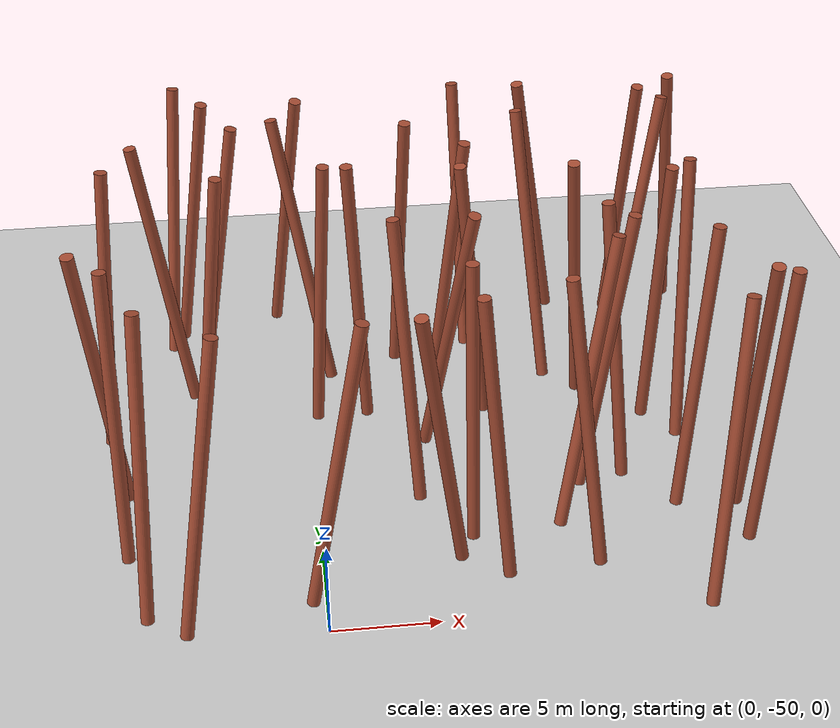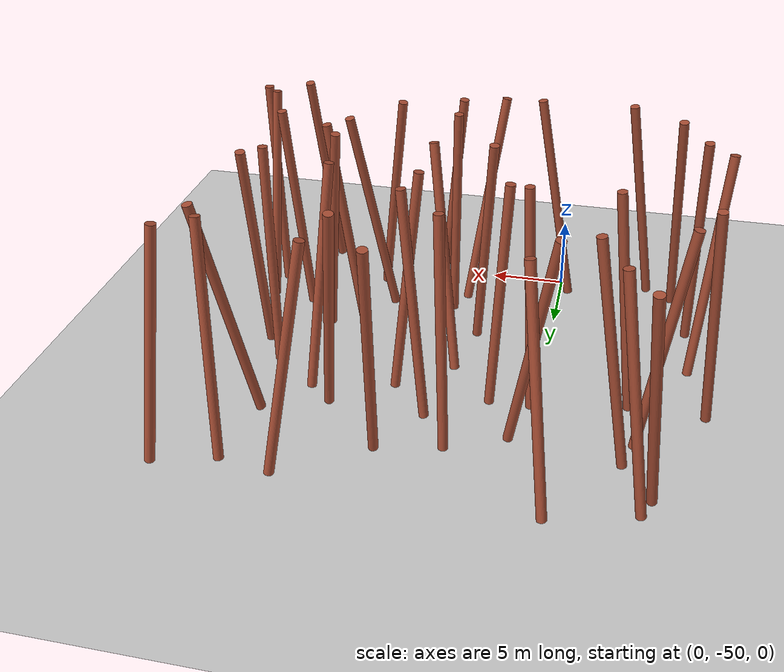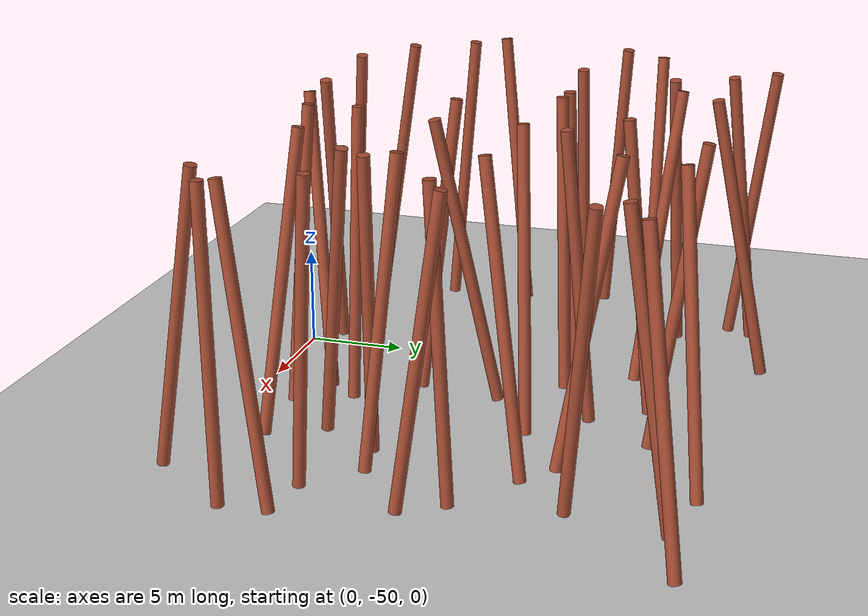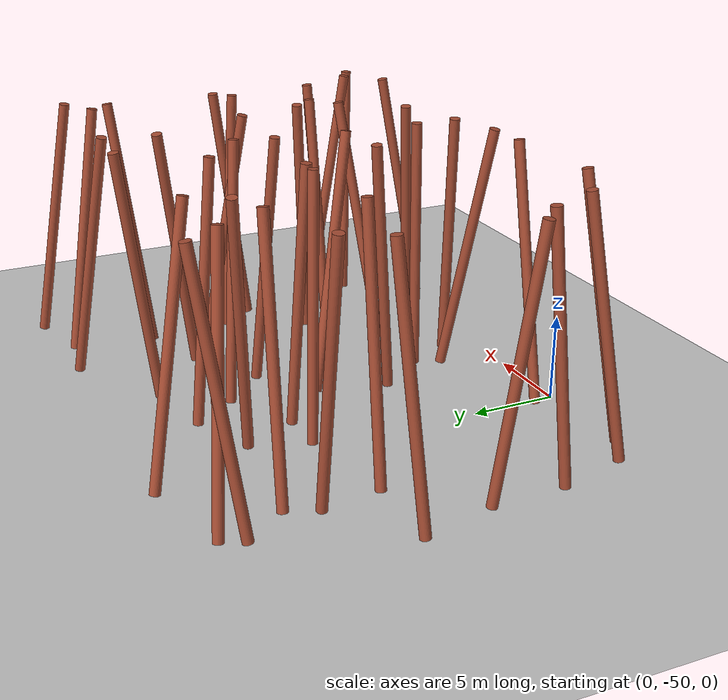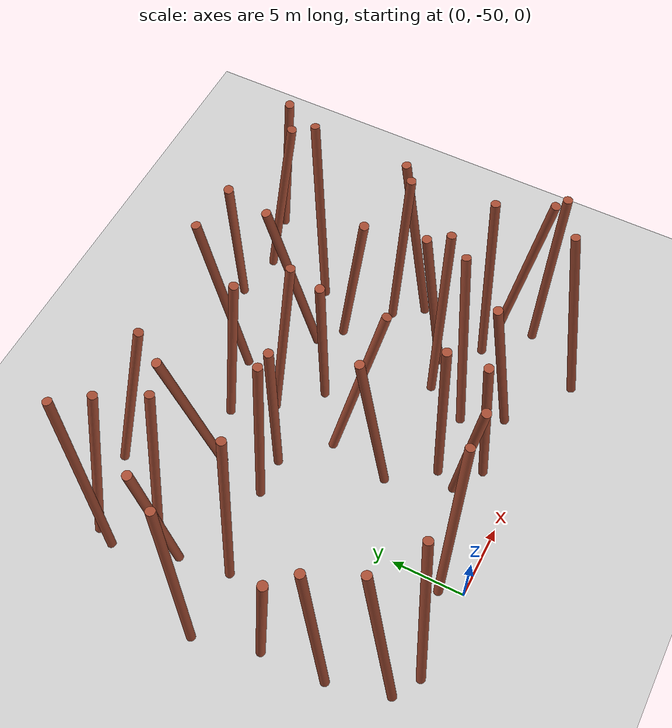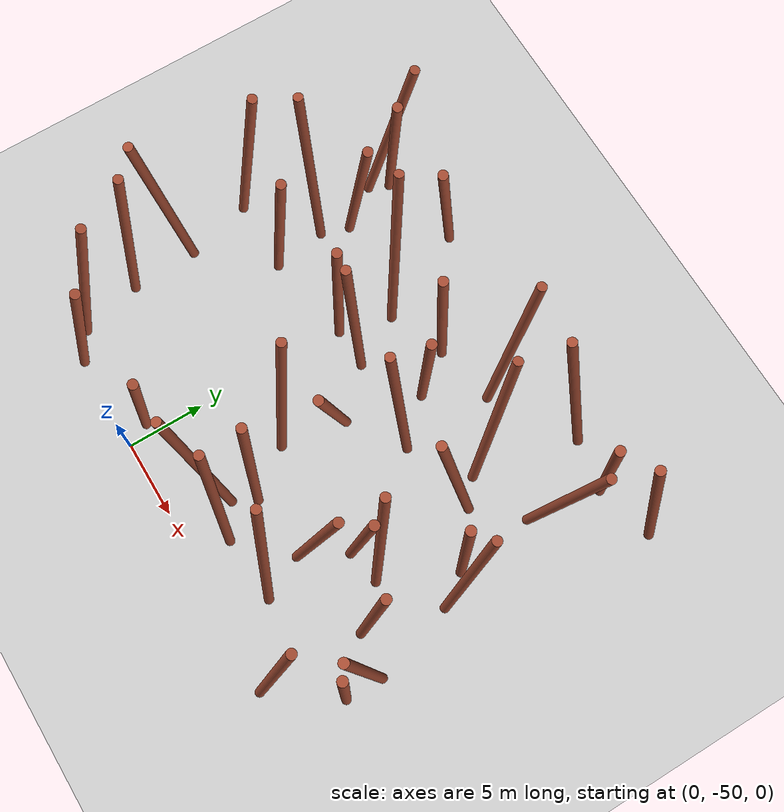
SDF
<sdf version="1.5">
 <world name="default">
  <include><uri>model://sun</uri></include>
  <include><uri>model://ground_plane</uri></include>
  <include><uri>model://asphalt_plane</uri><pose>0 0 -0.000001 0 0 0</pose></include>
  <model name="unit_cylinder_0">
   <pose>-7.53433 -47.54416 7.70000 -0.16482 0.05793 0.00000</pose>
   <gravity>0 0 0</gravity>
   <link name="link">
    <inertial>
     <mass>100</mass>
     <inertia><ixx>20</ixx><ixy>0</ixy><ixz>0</ixz><iyy>20</iyy><iyz>0</iyz><izz>20</izz></inertia>
    </inertial>
    <collision name="collision">
     <geometry><cylinder><radius>0.300</radius><length>15.000</length></cylinder></geometry>
    </collision>
    <visual name="visual">
     <geometry><cylinder><radius>0.300</radius><length>15.000</length></cylinder></geometry>
     <material>
      <script><name>Gazebo/Bricks</name><uri>file://media/materials/scripts/gazebo.material</uri></script>
     </material>
    </visual>
    <kinematic>1</kinematic>
   </link>
   <static>0</static>
   <plugin name="dynamic_obstacle_motion_0" filename="libobstaclePathPlugin.so">
    <motion_type>proximity_linear</motion_type>
    <direction>0.377619958 -0.925960673 0.000000000</direction>
    <velocity>1.842558451</velocity>
    <activation_distance>20.000000000</activation_distance>
    <activation_model>iris</activation_model>
    <orientation>false</orientation>
    <marker_enabled>true</marker_enabled>
    <marker_id>0</marker_id>
    <marker_radius>0.300000000</marker_radius>
    <marker_height>15.000000000</marker_height>
    <marker_rate>20.0</marker_rate>
    <marker_topic>/uav_simulator/dynamic_obstacles</marker_topic>
    <marker_frame>map</marker_frame>
   </plugin>
  </model>
  <model name="unit_cylinder_1">
   <pose>-8.78273 -44.01166 7.70000 -0.09766 0.02668 0.00000</pose>
   <gravity>0 0 0</gravity>
   <link name="link">
    <inertial>
     <mass>100</mass>
     <inertia><ixx>20</ixx><ixy>0</ixy><ixz>0</ixz><iyy>20</iyy><iyz>0</iyz><izz>20</izz></inertia>
    </inertial>
    <collision name="collision">
     <geometry><cylinder><radius>0.300</radius><length>15.000</length></cylinder></geometry>
    </collision>
    <visual name="visual">
     <geometry><cylinder><radius>0.300</radius><length>15.000</length></cylinder></geometry>
     <material>
      <script><name>Gazebo/Bricks</name><uri>file://media/materials/scripts/gazebo.material</uri></script>
     </material>
    </visual>
   </link>
   <static>1</static>
  </model>
  <model name="unit_cylinder_2">
   <pose>-9.56069 -41.14395 7.70000 0.10310 -0.05871 0.00000</pose>
   <gravity>0 0 0</gravity>
   <link name="link">
    <inertial>
     <mass>100</mass>
     <inertia><ixx>20</ixx><ixy>0</ixy><ixz>0</ixz><iyy>20</iyy><iyz>0</iyz><izz>20</izz></inertia>
    </inertial>
    <collision name="collision">
     <geometry><cylinder><radius>0.300</radius><length>15.000</length></cylinder></geometry>
    </collision>
    <visual name="visual">
     <geometry><cylinder><radius>0.300</radius><length>15.000</length></cylinder></geometry>
     <material>
      <script><name>Gazebo/Bricks</name><uri>file://media/materials/scripts/gazebo.material</uri></script>
     </material>
    </visual>
   </link>
   <static>1</static>
  </model>
  <model name="unit_cylinder_3">
   <pose>-9.64381 -35.40931 7.70000 -0.08878 0.07868 0.00000</pose>
   <gravity>0 0 0</gravity>
   <link name="link">
    <inertial>
     <mass>100</mass>
     <inertia><ixx>20</ixx><ixy>0</ixy><ixz>0</ixz><iyy>20</iyy><iyz>0</iyz><izz>20</izz></inertia>
    </inertial>
    <collision name="collision">
     <geometry><cylinder><radius>0.300</radius><length>15.000</length></cylinder></geometry>
    </collision>
    <visual name="visual">
     <geometry><cylinder><radius>0.300</radius><length>15.000</length></cylinder></geometry>
     <material>
      <script><name>Gazebo/Bricks</name><uri>file://media/materials/scripts/gazebo.material</uri></script>
     </material>
    </visual>
    <kinematic>1</kinematic>
   </link>
   <static>0</static>
   <plugin name="dynamic_obstacle_motion_3" filename="libobstaclePathPlugin.so">
    <motion_type>proximity_linear</motion_type>
    <direction>-0.023510522 -0.999723589 0.000000000</direction>
    <velocity>0.789084002</velocity>
    <activation_distance>20.000000000</activation_distance>
    <activation_model>iris</activation_model>
    <orientation>false</orientation>
    <marker_enabled>true</marker_enabled>
    <marker_id>3</marker_id>
    <marker_radius>0.300000000</marker_radius>
    <marker_height>15.000000000</marker_height>
    <marker_rate>20.0</marker_rate>
    <marker_topic>/uav_simulator/dynamic_obstacles</marker_topic>
    <marker_frame>map</marker_frame>
   </plugin>
  </model>
  <model name="unit_cylinder_4">
   <pose>-6.93488 -32.61874 7.70000 -0.00841 -0.12245 0.00000</pose>
   <gravity>0 0 0</gravity>
   <link name="link">
    <inertial>
     <mass>100</mass>
     <inertia><ixx>20</ixx><ixy>0</ixy><ixz>0</ixz><iyy>20</iyy><iyz>0</iyz><izz>20</izz></inertia>
    </inertial>
    <collision name="collision">
     <geometry><cylinder><radius>0.300</radius><length>15.000</length></cylinder></geometry>
    </collision>
    <visual name="visual">
     <geometry><cylinder><radius>0.300</radius><length>15.000</length></cylinder></geometry>
     <material>
      <script><name>Gazebo/Bricks</name><uri>file://media/materials/scripts/gazebo.material</uri></script>
     </material>
    </visual>
    <kinematic>1</kinematic>
   </link>
   <static>0</static>
   <plugin name="dynamic_obstacle_motion_4" filename="libobstaclePathPlugin.so">
    <motion_type>proximity_linear</motion_type>
    <direction>-0.650799631 0.759249524 0.000000000</direction>
    <velocity>0.699930068</velocity>
    <activation_distance>20.000000000</activation_distance>
    <activation_model>iris</activation_model>
    <orientation>false</orientation>
    <marker_enabled>true</marker_enabled>
    <marker_id>4</marker_id>
    <marker_radius>0.300000000</marker_radius>
    <marker_height>15.000000000</marker_height>
    <marker_rate>20.0</marker_rate>
    <marker_topic>/uav_simulator/dynamic_obstacles</marker_topic>
    <marker_frame>map</marker_frame>
   </plugin>
  </model>
  <model name="unit_cylinder_5">
   <pose>-6.59663 -27.28301 7.70000 -0.14401 0.08279 0.00000</pose>
   <gravity>0 0 0</gravity>
   <link name="link">
    <inertial>
     <mass>100</mass>
     <inertia><ixx>20</ixx><ixy>0</ixy><ixz>0</ixz><iyy>20</iyy><iyz>0</iyz><izz>20</izz></inertia>
    </inertial>
    <collision name="collision">
     <geometry><cylinder><radius>0.300</radius><length>15.000</length></cylinder></geometry>
    </collision>
    <visual name="visual">
     <geometry><cylinder><radius>0.300</radius><length>15.000</length></cylinder></geometry>
     <material>
      <script><name>Gazebo/Bricks</name><uri>file://media/materials/scripts/gazebo.material</uri></script>
     </material>
    </visual>
   </link>
   <static>1</static>
  </model>
  <model name="unit_cylinder_15">
   <pose>-5.10277 -49.07799 7.70000 -0.10513 0.14993 0.00000</pose>
   <gravity>0 0 0</gravity>
   <link name="link">
    <inertial>
     <mass>100</mass>
     <inertia><ixx>20</ixx><ixy>0</ixy><ixz>0</ixz><iyy>20</iyy><iyz>0</iyz><izz>20</izz></inertia>
    </inertial>
    <collision name="collision">
     <geometry><cylinder><radius>0.300</radius><length>15.000</length></cylinder></geometry>
    </collision>
    <visual name="visual">
     <geometry><cylinder><radius>0.300</radius><length>15.000</length></cylinder></geometry>
     <material>
      <script><name>Gazebo/Bricks</name><uri>file://media/materials/scripts/gazebo.material</uri></script>
     </material>
    </visual>
    <kinematic>1</kinematic>
   </link>
   <static>0</static>
   <plugin name="dynamic_obstacle_motion_15" filename="libobstaclePathPlugin.so">
    <motion_type>proximity_linear</motion_type>
    <direction>-0.502778501 0.864415282 0.000000000</direction>
    <velocity>1.408256255</velocity>
    <activation_distance>20.000000000</activation_distance>
    <activation_model>iris</activation_model>
    <orientation>false</orientation>
    <marker_enabled>true</marker_enabled>
    <marker_id>15</marker_id>
    <marker_radius>0.300000000</marker_radius>
    <marker_height>15.000000000</marker_height>
    <marker_rate>20.0</marker_rate>
    <marker_topic>/uav_simulator/dynamic_obstacles</marker_topic>
    <marker_frame>map</marker_frame>
   </plugin>
  </model>
  <model name="unit_cylinder_16">
   <pose>-4.68098 -36.06371 7.70000 -0.01164 0.11515 0.00000</pose>
   <gravity>0 0 0</gravity>
   <link name="link">
    <inertial>
     <mass>100</mass>
     <inertia><ixx>20</ixx><ixy>0</ixy><ixz>0</ixz><iyy>20</iyy><iyz>0</iyz><izz>20</izz></inertia>
    </inertial>
    <collision name="collision">
     <geometry><cylinder><radius>0.300</radius><length>15.000</length></cylinder></geometry>
    </collision>
    <visual name="visual">
     <geometry><cylinder><radius>0.300</radius><length>15.000</length></cylinder></geometry>
     <material>
      <script><name>Gazebo/Bricks</name><uri>file://media/materials/scripts/gazebo.material</uri></script>
     </material>
    </visual>
    <kinematic>1</kinematic>
   </link>
   <static>0</static>
   <plugin name="dynamic_obstacle_motion_16" filename="libobstaclePathPlugin.so">
    <motion_type>proximity_linear</motion_type>
    <direction>-0.969477639 0.245179747 -0.000000000</direction>
    <velocity>0.384918326</velocity>
    <activation_distance>20.000000000</activation_distance>
    <activation_model>iris</activation_model>
    <orientation>false</orientation>
    <marker_enabled>true</marker_enabled>
    <marker_id>16</marker_id>
    <marker_radius>0.300000000</marker_radius>
    <marker_height>15.000000000</marker_height>
    <marker_rate>20.0</marker_rate>
    <marker_topic>/uav_simulator/dynamic_obstacles</marker_topic>
    <marker_frame>map</marker_frame>
   </plugin>
  </model>
  <model name="unit_cylinder_17">
   <pose>-4.26286 -30.93398 7.70000 0.00834 0.15929 0.00000</pose>
   <gravity>0 0 0</gravity>
   <link name="link">
    <inertial>
     <mass>100</mass>
     <inertia><ixx>20</ixx><ixy>0</ixy><ixz>0</ixz><iyy>20</iyy><iyz>0</iyz><izz>20</izz></inertia>
    </inertial>
    <collision name="collision">
     <geometry><cylinder><radius>0.300</radius><length>15.000</length></cylinder></geometry>
    </collision>
    <visual name="visual">
     <geometry><cylinder><radius>0.300</radius><length>15.000</length></cylinder></geometry>
     <material>
      <script><name>Gazebo/Bricks</name><uri>file://media/materials/scripts/gazebo.material</uri></script>
     </material>
    </visual>
   </link>
   <static>1</static>
  </model>
  <model name="unit_cylinder_18">
   <pose>-5.60371 -27.65031 7.70000 0.07561 0.14385 0.00000</pose>
   <gravity>0 0 0</gravity>
   <link name="link">
    <inertial>
     <mass>100</mass>
     <inertia><ixx>20</ixx><ixy>0</ixy><ixz>0</ixz><iyy>20</iyy><iyz>0</iyz><izz>20</izz></inertia>
    </inertial>
    <collision name="collision">
     <geometry><cylinder><radius>0.300</radius><length>15.000</length></cylinder></geometry>
    </collision>
    <visual name="visual">
     <geometry><cylinder><radius>0.300</radius><length>15.000</length></cylinder></geometry>
     <material>
      <script><name>Gazebo/Bricks</name><uri>file://media/materials/scripts/gazebo.material</uri></script>
     </material>
    </visual>
    <kinematic>1</kinematic>
   </link>
   <static>0</static>
   <plugin name="dynamic_obstacle_motion_18" filename="libobstaclePathPlugin.so">
    <motion_type>proximity_linear</motion_type>
    <direction>0.450522633 0.892765007 0.000000000</direction>
    <velocity>0.734853509</velocity>
    <activation_distance>20.000000000</activation_distance>
    <activation_model>iris</activation_model>
    <orientation>false</orientation>
    <marker_enabled>true</marker_enabled>
    <marker_id>18</marker_id>
    <marker_radius>0.300000000</marker_radius>
    <marker_height>15.000000000</marker_height>
    <marker_rate>20.0</marker_rate>
    <marker_topic>/uav_simulator/dynamic_obstacles</marker_topic>
    <marker_frame>map</marker_frame>
   </plugin>
  </model>
  <model name="unit_cylinder_27">
   <pose>0.64072 -48.26306 7.70000 -0.02805 0.17023 0.00000</pose>
   <gravity>0 0 0</gravity>
   <link name="link">
    <inertial>
     <mass>100</mass>
     <inertia><ixx>20</ixx><ixy>0</ixy><ixz>0</ixz><iyy>20</iyy><iyz>0</iyz><izz>20</izz></inertia>
    </inertial>
    <collision name="collision">
     <geometry><cylinder><radius>0.300</radius><length>15.000</length></cylinder></geometry>
    </collision>
    <visual name="visual">
     <geometry><cylinder><radius>0.300</radius><length>15.000</length></cylinder></geometry>
     <material>
      <script><name>Gazebo/Bricks</name><uri>file://media/materials/scripts/gazebo.material</uri></script>
     </material>
    </visual>
   </link>
   <static>1</static>
  </model>
  <model name="unit_cylinder_28">
   <pose>0.75306 -35.29138 7.70000 0.02295 0.05097 0.00000</pose>
   <gravity>0 0 0</gravity>
   <link name="link">
    <inertial>
     <mass>100</mass>
     <inertia><ixx>20</ixx><ixy>0</ixy><ixz>0</ixz><iyy>20</iyy><iyz>0</iyz><izz>20</izz></inertia>
    </inertial>
    <collision name="collision">
     <geometry><cylinder><radius>0.300</radius><length>15.000</length></cylinder></geometry>
    </collision>
    <visual name="visual">
     <geometry><cylinder><radius>0.300</radius><length>15.000</length></cylinder></geometry>
     <material>
      <script><name>Gazebo/Bricks</name><uri>file://media/materials/scripts/gazebo.material</uri></script>
     </material>
    </visual>
    <kinematic>1</kinematic>
   </link>
   <static>0</static>
   <plugin name="dynamic_obstacle_motion_28" filename="libobstaclePathPlugin.so">
    <motion_type>proximity_linear</motion_type>
    <direction>0.999169012 0.040758858 0.000000000</direction>
    <velocity>0.725158731</velocity>
    <activation_distance>20.000000000</activation_distance>
    <activation_model>iris</activation_model>
    <orientation>false</orientation>
    <marker_enabled>true</marker_enabled>
    <marker_id>28</marker_id>
    <marker_radius>0.300000000</marker_radius>
    <marker_height>15.000000000</marker_height>
    <marker_rate>20.0</marker_rate>
    <marker_topic>/uav_simulator/dynamic_obstacles</marker_topic>
    <marker_frame>map</marker_frame>
   </plugin>
  </model>
  <model name="unit_cylinder_29">
   <pose>0.08620 -31.01687 7.70000 -0.10483 -0.16252 0.00000</pose>
   <gravity>0 0 0</gravity>
   <link name="link">
    <inertial>
     <mass>100</mass>
     <inertia><ixx>20</ixx><ixy>0</ixy><ixz>0</ixz><iyy>20</iyy><iyz>0</iyz><izz>20</izz></inertia>
    </inertial>
    <collision name="collision">
     <geometry><cylinder><radius>0.300</radius><length>15.000</length></cylinder></geometry>
    </collision>
    <visual name="visual">
     <geometry><cylinder><radius>0.300</radius><length>15.000</length></cylinder></geometry>
     <material>
      <script><name>Gazebo/Bricks</name><uri>file://media/materials/scripts/gazebo.material</uri></script>
     </material>
    </visual>
   </link>
   <static>1</static>
  </model>
  <model name="unit_cylinder_30">
   <pose>-0.64518 -26.98273 7.70000 0.17001 0.11079 0.00000</pose>
   <gravity>0 0 0</gravity>
   <link name="link">
    <inertial>
     <mass>100</mass>
     <inertia><ixx>20</ixx><ixy>0</ixy><ixz>0</ixz><iyy>20</iyy><iyz>0</iyz><izz>20</izz></inertia>
    </inertial>
    <collision name="collision">
     <geometry><cylinder><radius>0.300</radius><length>15.000</length></cylinder></geometry>
    </collision>
    <visual name="visual">
     <geometry><cylinder><radius>0.300</radius><length>15.000</length></cylinder></geometry>
     <material>
      <script><name>Gazebo/Bricks</name><uri>file://media/materials/scripts/gazebo.material</uri></script>
     </material>
    </visual>
   </link>
   <static>1</static>
  </model>
  <model name="unit_cylinder_37">
   <pose>5.32693 -47.16911 7.70000 0.10975 -0.14322 0.00000</pose>
   <gravity>0 0 0</gravity>
   <link name="link">
    <inertial>
     <mass>100</mass>
     <inertia><ixx>20</ixx><ixy>0</ixy><ixz>0</ixz><iyy>20</iyy><iyz>0</iyz><izz>20</izz></inertia>
    </inertial>
    <collision name="collision">
     <geometry><cylinder><radius>0.300</radius><length>15.000</length></cylinder></geometry>
    </collision>
    <visual name="visual">
     <geometry><cylinder><radius>0.300</radius><length>15.000</length></cylinder></geometry>
     <material>
      <script><name>Gazebo/Bricks</name><uri>file://media/materials/scripts/gazebo.material</uri></script>
     </material>
    </visual>
    <kinematic>1</kinematic>
   </link>
   <static>0</static>
   <plugin name="dynamic_obstacle_motion_37" filename="libobstaclePathPlugin.so">
    <motion_type>proximity_linear</motion_type>
    <direction>0.865789516 0.500408347 0.000000000</direction>
    <velocity>0.292876167</velocity>
    <activation_distance>20.000000000</activation_distance>
    <activation_model>iris</activation_model>
    <orientation>false</orientation>
    <marker_enabled>true</marker_enabled>
    <marker_id>37</marker_id>
    <marker_radius>0.300000000</marker_radius>
    <marker_height>15.000000000</marker_height>
    <marker_rate>20.0</marker_rate>
    <marker_topic>/uav_simulator/dynamic_obstacles</marker_topic>
    <marker_frame>map</marker_frame>
   </plugin>
  </model>
  <model name="unit_cylinder_38">
   <pose>4.41884 -41.22763 7.70000 -0.10581 -0.07132 0.00000</pose>
   <gravity>0 0 0</gravity>
   <link name="link">
    <inertial>
     <mass>100</mass>
     <inertia><ixx>20</ixx><ixy>0</ixy><ixz>0</ixz><iyy>20</iyy><iyz>0</iyz><izz>20</izz></inertia>
    </inertial>
    <collision name="collision">
     <geometry><cylinder><radius>0.300</radius><length>15.000</length></cylinder></geometry>
    </collision>
    <visual name="visual">
     <geometry><cylinder><radius>0.300</radius><length>15.000</length></cylinder></geometry>
     <material>
      <script><name>Gazebo/Bricks</name><uri>file://media/materials/scripts/gazebo.material</uri></script>
     </material>
    </visual>
   </link>
   <static>1</static>
  </model>
  <model name="unit_cylinder_39">
   <pose>2.58565 -35.30713 7.70000 0.03335 -0.05035 0.00000</pose>
   <gravity>0 0 0</gravity>
   <link name="link">
    <inertial>
     <mass>100</mass>
     <inertia><ixx>20</ixx><ixy>0</ixy><ixz>0</ixz><iyy>20</iyy><iyz>0</iyz><izz>20</izz></inertia>
    </inertial>
    <collision name="collision">
     <geometry><cylinder><radius>0.300</radius><length>15.000</length></cylinder></geometry>
    </collision>
    <visual name="visual">
     <geometry><cylinder><radius>0.300</radius><length>15.000</length></cylinder></geometry>
     <material>
      <script><name>Gazebo/Bricks</name><uri>file://media/materials/scripts/gazebo.material</uri></script>
     </material>
    </visual>
    <kinematic>1</kinematic>
   </link>
   <static>0</static>
   <plugin name="dynamic_obstacle_motion_39" filename="libobstaclePathPlugin.so">
    <motion_type>proximity_linear</motion_type>
    <direction>-0.978907618 0.204303391 -0.000000000</direction>
    <velocity>1.104325235</velocity>
    <activation_distance>20.000000000</activation_distance>
    <activation_model>iris</activation_model>
    <orientation>false</orientation>
    <marker_enabled>true</marker_enabled>
    <marker_id>39</marker_id>
    <marker_radius>0.300000000</marker_radius>
    <marker_height>15.000000000</marker_height>
    <marker_rate>20.0</marker_rate>
    <marker_topic>/uav_simulator/dynamic_obstacles</marker_topic>
    <marker_frame>map</marker_frame>
   </plugin>
  </model>
  <model name="unit_cylinder_40">
   <pose>5.13099 -30.90825 7.70000 0.08246 0.03224 0.00000</pose>
   <gravity>0 0 0</gravity>
   <link name="link">
    <inertial>
     <mass>100</mass>
     <inertia><ixx>20</ixx><ixy>0</ixy><ixz>0</ixz><iyy>20</iyy><iyz>0</iyz><izz>20</izz></inertia>
    </inertial>
    <collision name="collision">
     <geometry><cylinder><radius>0.300</radius><length>15.000</length></cylinder></geometry>
    </collision>
    <visual name="visual">
     <geometry><cylinder><radius>0.300</radius><length>15.000</length></cylinder></geometry>
     <material>
      <script><name>Gazebo/Bricks</name><uri>file://media/materials/scripts/gazebo.material</uri></script>
     </material>
    </visual>
   </link>
   <static>1</static>
  </model>
  <model name="unit_cylinder_51">
   <pose>7.67548 -47.31467 7.70000 -0.04460 -0.10075 0.00000</pose>
   <gravity>0 0 0</gravity>
   <link name="link">
    <inertial>
     <mass>100</mass>
     <inertia><ixx>20</ixx><ixy>0</ixy><ixz>0</ixz><iyy>20</iyy><iyz>0</iyz><izz>20</izz></inertia>
    </inertial>
    <collision name="collision">
     <geometry><cylinder><radius>0.300</radius><length>15.000</length></cylinder></geometry>
    </collision>
    <visual name="visual">
     <geometry><cylinder><radius>0.300</radius><length>15.000</length></cylinder></geometry>
     <material>
      <script><name>Gazebo/Bricks</name><uri>file://media/materials/scripts/gazebo.material</uri></script>
     </material>
    </visual>
   </link>
   <static>1</static>
  </model>
  <model name="unit_cylinder_52">
   <pose>6.97494 -44.70066 7.70000 -0.03168 -0.02127 0.00000</pose>
   <gravity>0 0 0</gravity>
   <link name="link">
    <inertial>
     <mass>100</mass>
     <inertia><ixx>20</ixx><ixy>0</ixy><ixz>0</ixz><iyy>20</iyy><iyz>0</iyz><izz>20</izz></inertia>
    </inertial>
    <collision name="collision">
     <geometry><cylinder><radius>0.300</radius><length>15.000</length></cylinder></geometry>
    </collision>
    <visual name="visual">
     <geometry><cylinder><radius>0.300</radius><length>15.000</length></cylinder></geometry>
     <material>
      <script><name>Gazebo/Bricks</name><uri>file://media/materials/scripts/gazebo.material</uri></script>
     </material>
    </visual>
    <kinematic>1</kinematic>
   </link>
   <static>0</static>
   <plugin name="dynamic_obstacle_motion_52" filename="libobstaclePathPlugin.so">
    <motion_type>proximity_linear</motion_type>
    <direction>0.679539945 -0.733638510 0.000000000</direction>
    <velocity>0.797888884</velocity>
    <activation_distance>20.000000000</activation_distance>
    <activation_model>iris</activation_model>
    <orientation>false</orientation>
    <marker_enabled>true</marker_enabled>
    <marker_id>52</marker_id>
    <marker_radius>0.300000000</marker_radius>
    <marker_height>15.000000000</marker_height>
    <marker_rate>20.0</marker_rate>
    <marker_topic>/uav_simulator/dynamic_obstacles</marker_topic>
    <marker_frame>map</marker_frame>
   </plugin>
  </model>
  <model name="unit_cylinder_53">
   <pose>6.60856 -39.08998 7.70000 0.17289 0.12512 0.00000</pose>
   <gravity>0 0 0</gravity>
   <link name="link">
    <inertial>
     <mass>100</mass>
     <inertia><ixx>20</ixx><ixy>0</ixy><ixz>0</ixz><iyy>20</iyy><iyz>0</iyz><izz>20</izz></inertia>
    </inertial>
    <collision name="collision">
     <geometry><cylinder><radius>0.300</radius><length>15.000</length></cylinder></geometry>
    </collision>
    <visual name="visual">
     <geometry><cylinder><radius>0.300</radius><length>15.000</length></cylinder></geometry>
     <material>
      <script><name>Gazebo/Bricks</name><uri>file://media/materials/scripts/gazebo.material</uri></script>
     </material>
    </visual>
    <kinematic>1</kinematic>
   </link>
   <static>0</static>
   <plugin name="dynamic_obstacle_motion_53" filename="libobstaclePathPlugin.so">
    <motion_type>proximity_linear</motion_type>
    <direction>-0.265497048 -0.964111673 0.000000000</direction>
    <velocity>1.921942027</velocity>
    <activation_distance>20.000000000</activation_distance>
    <activation_model>iris</activation_model>
    <orientation>false</orientation>
    <marker_enabled>true</marker_enabled>
    <marker_id>53</marker_id>
    <marker_radius>0.300000000</marker_radius>
    <marker_height>15.000000000</marker_height>
    <marker_rate>20.0</marker_rate>
    <marker_topic>/uav_simulator/dynamic_obstacles</marker_topic>
    <marker_frame>map</marker_frame>
   </plugin>
  </model>
  <model name="unit_cylinder_54">
   <pose>8.27313 -35.75967 7.70000 0.04221 -0.10684 0.00000</pose>
   <gravity>0 0 0</gravity>
   <link name="link">
    <inertial>
     <mass>100</mass>
     <inertia><ixx>20</ixx><ixy>0</ixy><ixz>0</ixz><iyy>20</iyy><iyz>0</iyz><izz>20</izz></inertia>
    </inertial>
    <collision name="collision">
     <geometry><cylinder><radius>0.300</radius><length>15.000</length></cylinder></geometry>
    </collision>
    <visual name="visual">
     <geometry><cylinder><radius>0.300</radius><length>15.000</length></cylinder></geometry>
     <material>
      <script><name>Gazebo/Bricks</name><uri>file://media/materials/scripts/gazebo.material</uri></script>
     </material>
    </visual>
    <kinematic>1</kinematic>
   </link>
   <static>0</static>
   <plugin name="dynamic_obstacle_motion_54" filename="libobstaclePathPlugin.so">
    <motion_type>proximity_linear</motion_type>
    <direction>0.763895664 0.645339766 0.000000000</direction>
    <velocity>0.440898402</velocity>
    <activation_distance>20.000000000</activation_distance>
    <activation_model>iris</activation_model>
    <orientation>false</orientation>
    <marker_enabled>true</marker_enabled>
    <marker_id>54</marker_id>
    <marker_radius>0.300000000</marker_radius>
    <marker_height>15.000000000</marker_height>
    <marker_rate>20.0</marker_rate>
    <marker_topic>/uav_simulator/dynamic_obstacles</marker_topic>
    <marker_frame>map</marker_frame>
   </plugin>
  </model>
  <model name="unit_cylinder_55">
   <pose>7.31557 -33.38093 7.70000 0.06559 0.09041 0.00000</pose>
   <gravity>0 0 0</gravity>
   <link name="link">
    <inertial>
     <mass>100</mass>
     <inertia><ixx>20</ixx><ixy>0</ixy><ixz>0</ixz><iyy>20</iyy><iyz>0</iyz><izz>20</izz></inertia>
    </inertial>
    <collision name="collision">
     <geometry><cylinder><radius>0.300</radius><length>15.000</length></cylinder></geometry>
    </collision>
    <visual name="visual">
     <geometry><cylinder><radius>0.300</radius><length>15.000</length></cylinder></geometry>
     <material>
      <script><name>Gazebo/Bricks</name><uri>file://media/materials/scripts/gazebo.material</uri></script>
     </material>
    </visual>
   </link>
   <static>1</static>
  </model>
  <model name="unit_cylinder_56">
   <pose>8.58478 -28.36931 7.70000 -0.14822 -0.04207 0.00000</pose>
   <gravity>0 0 0</gravity>
   <link name="link">
    <inertial>
     <mass>100</mass>
     <inertia><ixx>20</ixx><ixy>0</ixy><ixz>0</ixz><iyy>20</iyy><iyz>0</iyz><izz>20</izz></inertia>
    </inertial>
    <collision name="collision">
     <geometry><cylinder><radius>0.300</radius><length>15.000</length></cylinder></geometry>
    </collision>
    <visual name="visual">
     <geometry><cylinder><radius>0.300</radius><length>15.000</length></cylinder></geometry>
     <material>
      <script><name>Gazebo/Bricks</name><uri>file://media/materials/scripts/gazebo.material</uri></script>
     </material>
    </visual>
    <kinematic>1</kinematic>
   </link>
   <static>0</static>
   <plugin name="dynamic_obstacle_motion_56" filename="libobstaclePathPlugin.so">
    <motion_type>proximity_linear</motion_type>
    <direction>0.075944518 0.997112045 0.000000000</direction>
    <velocity>0.482660247</velocity>
    <activation_distance>20.000000000</activation_distance>
    <activation_model>iris</activation_model>
    <orientation>false</orientation>
    <marker_enabled>true</marker_enabled>
    <marker_id>56</marker_id>
    <marker_radius>0.300000000</marker_radius>
    <marker_height>15.000000000</marker_height>
    <marker_rate>20.0</marker_rate>
    <marker_topic>/uav_simulator/dynamic_obstacles</marker_topic>
    <marker_frame>map</marker_frame>
   </plugin>
  </model>
  <model name="unit_cylinder_66">
   <pose>11.74578 -46.65088 7.70000 -0.10045 -0.12913 0.00000</pose>
   <gravity>0 0 0</gravity>
   <link name="link">
    <inertial>
     <mass>100</mass>
     <inertia><ixx>20</ixx><ixy>0</ixy><ixz>0</ixz><iyy>20</iyy><iyz>0</iyz><izz>20</izz></inertia>
    </inertial>
    <collision name="collision">
     <geometry><cylinder><radius>0.300</radius><length>15.000</length></cylinder></geometry>
    </collision>
    <visual name="visual">
     <geometry><cylinder><radius>0.300</radius><length>15.000</length></cylinder></geometry>
     <material>
      <script><name>Gazebo/Bricks</name><uri>file://media/materials/scripts/gazebo.material</uri></script>
     </material>
    </visual>
    <kinematic>1</kinematic>
   </link>
   <static>0</static>
   <plugin name="dynamic_obstacle_motion_66" filename="libobstaclePathPlugin.so">
    <motion_type>proximity_linear</motion_type>
    <direction>-0.596055631 -0.802943139 -0.000000000</direction>
    <velocity>1.676249852</velocity>
    <activation_distance>20.000000000</activation_distance>
    <activation_model>iris</activation_model>
    <orientation>false</orientation>
    <marker_enabled>true</marker_enabled>
    <marker_id>66</marker_id>
    <marker_radius>0.300000000</marker_radius>
    <marker_height>15.000000000</marker_height>
    <marker_rate>20.0</marker_rate>
    <marker_topic>/uav_simulator/dynamic_obstacles</marker_topic>
    <marker_frame>map</marker_frame>
   </plugin>
  </model>
  <model name="unit_cylinder_67">
   <pose>12.40873 -43.71671 7.70000 -0.13075 0.14279 0.00000</pose>
   <gravity>0 0 0</gravity>
   <link name="link">
    <inertial>
     <mass>100</mass>
     <inertia><ixx>20</ixx><ixy>0</ixy><ixz>0</ixz><iyy>20</iyy><iyz>0</iyz><izz>20</izz></inertia>
    </inertial>
    <collision name="collision">
     <geometry><cylinder><radius>0.300</radius><length>15.000</length></cylinder></geometry>
    </collision>
    <visual name="visual">
     <geometry><cylinder><radius>0.300</radius><length>15.000</length></cylinder></geometry>
     <material>
      <script><name>Gazebo/Bricks</name><uri>file://media/materials/scripts/gazebo.material</uri></script>
     </material>
    </visual>
   </link>
   <static>1</static>
  </model>
  <model name="unit_cylinder_68">
   <pose>13.68333 -41.56326 7.70000 -0.03372 0.11181 0.00000</pose>
   <gravity>0 0 0</gravity>
   <link name="link">
    <inertial>
     <mass>100</mass>
     <inertia><ixx>20</ixx><ixy>0</ixy><ixz>0</ixz><iyy>20</iyy><iyz>0</iyz><izz>20</izz></inertia>
    </inertial>
    <collision name="collision">
     <geometry><cylinder><radius>0.300</radius><length>15.000</length></cylinder></geometry>
    </collision>
    <visual name="visual">
     <geometry><cylinder><radius>0.300</radius><length>15.000</length></cylinder></geometry>
     <material>
      <script><name>Gazebo/Bricks</name><uri>file://media/materials/scripts/gazebo.material</uri></script>
     </material>
    </visual>
    <kinematic>1</kinematic>
   </link>
   <static>0</static>
   <plugin name="dynamic_obstacle_motion_68" filename="libobstaclePathPlugin.so">
    <motion_type>proximity_linear</motion_type>
    <direction>0.404970638 -0.914329690 0.000000000</direction>
    <velocity>1.100615678</velocity>
    <activation_distance>20.000000000</activation_distance>
    <activation_model>iris</activation_model>
    <orientation>false</orientation>
    <marker_enabled>true</marker_enabled>
    <marker_id>68</marker_id>
    <marker_radius>0.300000000</marker_radius>
    <marker_height>15.000000000</marker_height>
    <marker_rate>20.0</marker_rate>
    <marker_topic>/uav_simulator/dynamic_obstacles</marker_topic>
    <marker_frame>map</marker_frame>
   </plugin>
  </model>
  <model name="unit_cylinder_69">
   <pose>13.52641 -35.28094 7.70000 0.13801 -0.09553 0.00000</pose>
   <gravity>0 0 0</gravity>
   <link name="link">
    <inertial>
     <mass>100</mass>
     <inertia><ixx>20</ixx><ixy>0</ixy><ixz>0</ixz><iyy>20</iyy><iyz>0</iyz><izz>20</izz></inertia>
    </inertial>
    <collision name="collision">
     <geometry><cylinder><radius>0.300</radius><length>15.000</length></cylinder></geometry>
    </collision>
    <visual name="visual">
     <geometry><cylinder><radius>0.300</radius><length>15.000</length></cylinder></geometry>
     <material>
      <script><name>Gazebo/Bricks</name><uri>file://media/materials/scripts/gazebo.material</uri></script>
     </material>
    </visual>
   </link>
   <static>1</static>
  </model>
  <model name="unit_cylinder_70">
   <pose>11.86415 -31.76531 7.70000 -0.16316 -0.11158 0.00000</pose>
   <gravity>0 0 0</gravity>
   <link name="link">
    <inertial>
     <mass>100</mass>
     <inertia><ixx>20</ixx><ixy>0</ixy><ixz>0</ixz><iyy>20</iyy><iyz>0</iyz><izz>20</izz></inertia>
    </inertial>
    <collision name="collision">
     <geometry><cylinder><radius>0.300</radius><length>15.000</length></cylinder></geometry>
    </collision>
    <visual name="visual">
     <geometry><cylinder><radius>0.300</radius><length>15.000</length></cylinder></geometry>
     <material>
      <script><name>Gazebo/Bricks</name><uri>file://media/materials/scripts/gazebo.material</uri></script>
     </material>
    </visual>
    <kinematic>1</kinematic>
   </link>
   <static>0</static>
   <plugin name="dynamic_obstacle_motion_70" filename="libobstaclePathPlugin.so">
    <motion_type>proximity_linear</motion_type>
    <direction>-0.679470924 0.733702435 0.000000000</direction>
    <velocity>0.837635981</velocity>
    <activation_distance>20.000000000</activation_distance>
    <activation_model>iris</activation_model>
    <orientation>false</orientation>
    <marker_enabled>true</marker_enabled>
    <marker_id>70</marker_id>
    <marker_radius>0.300000000</marker_radius>
    <marker_height>15.000000000</marker_height>
    <marker_rate>20.0</marker_rate>
    <marker_topic>/uav_simulator/dynamic_obstacles</marker_topic>
    <marker_frame>map</marker_frame>
   </plugin>
  </model>
  <model name="unit_cylinder_71">
   <pose>12.87628 -26.89175 7.70000 0.09529 -0.16915 0.00000</pose>
   <gravity>0 0 0</gravity>
   <link name="link">
    <inertial>
     <mass>100</mass>
     <inertia><ixx>20</ixx><ixy>0</ixy><ixz>0</ixz><iyy>20</iyy><iyz>0</iyz><izz>20</izz></inertia>
    </inertial>
    <collision name="collision">
     <geometry><cylinder><radius>0.300</radius><length>15.000</length></cylinder></geometry>
    </collision>
    <visual name="visual">
     <geometry><cylinder><radius>0.300</radius><length>15.000</length></cylinder></geometry>
     <material>
      <script><name>Gazebo/Bricks</name><uri>file://media/materials/scripts/gazebo.material</uri></script>
     </material>
    </visual>
    <kinematic>1</kinematic>
   </link>
   <static>0</static>
   <plugin name="dynamic_obstacle_motion_71" filename="libobstaclePathPlugin.so">
    <motion_type>proximity_linear</motion_type>
    <direction>-0.055883220 0.998437312 0.000000000</direction>
    <velocity>1.792855078</velocity>
    <activation_distance>20.000000000</activation_distance>
    <activation_model>iris</activation_model>
    <orientation>false</orientation>
    <marker_enabled>true</marker_enabled>
    <marker_id>71</marker_id>
    <marker_radius>0.300000000</marker_radius>
    <marker_height>15.000000000</marker_height>
    <marker_rate>20.0</marker_rate>
    <marker_topic>/uav_simulator/dynamic_obstacles</marker_topic>
    <marker_frame>map</marker_frame>
   </plugin>
  </model>
  <model name="unit_cylinder_81">
   <pose>17.45324 -49.26698 7.70000 -0.17447 0.04612 0.00000</pose>
   <gravity>0 0 0</gravity>
   <link name="link">
    <inertial>
     <mass>100</mass>
     <inertia><ixx>20</ixx><ixy>0</ixy><ixz>0</ixz><iyy>20</iyy><iyz>0</iyz><izz>20</izz></inertia>
    </inertial>
    <collision name="collision">
     <geometry><cylinder><radius>0.300</radius><length>15.000</length></cylinder></geometry>
    </collision>
    <visual name="visual">
     <geometry><cylinder><radius>0.300</radius><length>15.000</length></cylinder></geometry>
     <material>
      <script><name>Gazebo/Bricks</name><uri>file://media/materials/scripts/gazebo.material</uri></script>
     </material>
    </visual>
    <kinematic>1</kinematic>
   </link>
   <static>0</static>
   <plugin name="dynamic_obstacle_motion_81" filename="libobstaclePathPlugin.so">
    <motion_type>proximity_linear</motion_type>
    <direction>-0.660258990 0.751037993 0.000000000</direction>
    <velocity>1.827882569</velocity>
    <activation_distance>20.000000000</activation_distance>
    <activation_model>iris</activation_model>
    <orientation>false</orientation>
    <marker_enabled>true</marker_enabled>
    <marker_id>81</marker_id>
    <marker_radius>0.300000000</marker_radius>
    <marker_height>15.000000000</marker_height>
    <marker_rate>20.0</marker_rate>
    <marker_topic>/uav_simulator/dynamic_obstacles</marker_topic>
    <marker_frame>map</marker_frame>
   </plugin>
  </model>
  <model name="unit_cylinder_82">
   <pose>17.59095 -43.23118 7.70000 -0.06946 0.04490 0.00000</pose>
   <gravity>0 0 0</gravity>
   <link name="link">
    <inertial>
     <mass>100</mass>
     <inertia><ixx>20</ixx><ixy>0</ixy><ixz>0</ixz><iyy>20</iyy><iyz>0</iyz><izz>20</izz></inertia>
    </inertial>
    <collision name="collision">
     <geometry><cylinder><radius>0.300</radius><length>15.000</length></cylinder></geometry>
    </collision>
    <visual name="visual">
     <geometry><cylinder><radius>0.300</radius><length>15.000</length></cylinder></geometry>
     <material>
      <script><name>Gazebo/Bricks</name><uri>file://media/materials/scripts/gazebo.material</uri></script>
     </material>
    </visual>
    <kinematic>1</kinematic>
   </link>
   <static>0</static>
   <plugin name="dynamic_obstacle_motion_82" filename="libobstaclePathPlugin.so">
    <motion_type>proximity_linear</motion_type>
    <direction>-0.904112465 -0.427294572 0.000000000</direction>
    <velocity>1.240265033</velocity>
    <activation_distance>20.000000000</activation_distance>
    <activation_model>iris</activation_model>
    <orientation>false</orientation>
    <marker_enabled>true</marker_enabled>
    <marker_id>82</marker_id>
    <marker_radius>0.300000000</marker_radius>
    <marker_height>15.000000000</marker_height>
    <marker_rate>20.0</marker_rate>
    <marker_topic>/uav_simulator/dynamic_obstacles</marker_topic>
    <marker_frame>map</marker_frame>
   </plugin>
  </model>
  <model name="unit_cylinder_83">
   <pose>14.35000 -40.74772 7.70000 -0.08679 -0.10131 0.00000</pose>
   <gravity>0 0 0</gravity>
   <link name="link">
    <inertial>
     <mass>100</mass>
     <inertia><ixx>20</ixx><ixy>0</ixy><ixz>0</ixz><iyy>20</iyy><iyz>0</iyz><izz>20</izz></inertia>
    </inertial>
    <collision name="collision">
     <geometry><cylinder><radius>0.300</radius><length>15.000</length></cylinder></geometry>
    </collision>
    <visual name="visual">
     <geometry><cylinder><radius>0.300</radius><length>15.000</length></cylinder></geometry>
     <material>
      <script><name>Gazebo/Bricks</name><uri>file://media/materials/scripts/gazebo.material</uri></script>
     </material>
    </visual>
    <kinematic>1</kinematic>
   </link>
   <static>0</static>
   <plugin name="dynamic_obstacle_motion_83" filename="libobstaclePathPlugin.so">
    <motion_type>proximity_linear</motion_type>
    <direction>-0.929689645 -0.368343813 0.000000000</direction>
    <velocity>0.565204004</velocity>
    <activation_distance>20.000000000</activation_distance>
    <activation_model>iris</activation_model>
    <orientation>false</orientation>
    <marker_enabled>true</marker_enabled>
    <marker_id>83</marker_id>
    <marker_radius>0.300000000</marker_radius>
    <marker_height>15.000000000</marker_height>
    <marker_rate>20.0</marker_rate>
    <marker_topic>/uav_simulator/dynamic_obstacles</marker_topic>
    <marker_frame>map</marker_frame>
   </plugin>
  </model>
  <model name="unit_cylinder_84">
   <pose>17.23638 -37.05190 7.70000 0.04404 -0.00107 0.00000</pose>
   <gravity>0 0 0</gravity>
   <link name="link">
    <inertial>
     <mass>100</mass>
     <inertia><ixx>20</ixx><ixy>0</ixy><ixz>0</ixz><iyy>20</iyy><iyz>0</iyz><izz>20</izz></inertia>
    </inertial>
    <collision name="collision">
     <geometry><cylinder><radius>0.300</radius><length>15.000</length></cylinder></geometry>
    </collision>
    <visual name="visual">
     <geometry><cylinder><radius>0.300</radius><length>15.000</length></cylinder></geometry>
     <material>
      <script><name>Gazebo/Bricks</name><uri>file://media/materials/scripts/gazebo.material</uri></script>
     </material>
    </visual>
    <kinematic>1</kinematic>
   </link>
   <static>0</static>
   <plugin name="dynamic_obstacle_motion_84" filename="libobstaclePathPlugin.so">
    <motion_type>proximity_linear</motion_type>
    <direction>-0.632643823 -0.774442892 0.000000000</direction>
    <velocity>0.930632510</velocity>
    <activation_distance>20.000000000</activation_distance>
    <activation_model>iris</activation_model>
    <orientation>false</orientation>
    <marker_enabled>true</marker_enabled>
    <marker_id>84</marker_id>
    <marker_radius>0.300000000</marker_radius>
    <marker_height>15.000000000</marker_height>
    <marker_rate>20.0</marker_rate>
    <marker_topic>/uav_simulator/dynamic_obstacles</marker_topic>
    <marker_frame>map</marker_frame>
   </plugin>
  </model>
  <model name="unit_cylinder_85">
   <pose>17.63606 -30.76597 7.70000 -0.10916 0.13480 0.00000</pose>
   <gravity>0 0 0</gravity>
   <link name="link">
    <inertial>
     <mass>100</mass>
     <inertia><ixx>20</ixx><ixy>0</ixy><ixz>0</ixz><iyy>20</iyy><iyz>0</iyz><izz>20</izz></inertia>
    </inertial>
    <collision name="collision">
     <geometry><cylinder><radius>0.300</radius><length>15.000</length></cylinder></geometry>
    </collision>
    <visual name="visual">
     <geometry><cylinder><radius>0.300</radius><length>15.000</length></cylinder></geometry>
     <material>
      <script><name>Gazebo/Bricks</name><uri>file://media/materials/scripts/gazebo.material</uri></script>
     </material>
    </visual>
    <kinematic>1</kinematic>
   </link>
   <static>0</static>
   <plugin name="dynamic_obstacle_motion_85" filename="libobstaclePathPlugin.so">
    <motion_type>proximity_linear</motion_type>
    <direction>0.974620026 0.223865595 -0.000000000</direction>
    <velocity>1.237746439</velocity>
    <activation_distance>20.000000000</activation_distance>
    <activation_model>iris</activation_model>
    <orientation>false</orientation>
    <marker_enabled>true</marker_enabled>
    <marker_id>85</marker_id>
    <marker_radius>0.300000000</marker_radius>
    <marker_height>15.000000000</marker_height>
    <marker_rate>20.0</marker_rate>
    <marker_topic>/uav_simulator/dynamic_obstacles</marker_topic>
    <marker_frame>map</marker_frame>
   </plugin>
  </model>
  <model name="unit_cylinder_86">
   <pose>17.55451 -27.78100 7.70000 0.13348 0.01730 0.00000</pose>
   <gravity>0 0 0</gravity>
   <link name="link">
    <inertial>
     <mass>100</mass>
     <inertia><ixx>20</ixx><ixy>0</ixy><ixz>0</ixz><iyy>20</iyy><iyz>0</iyz><izz>20</izz></inertia>
    </inertial>
    <collision name="collision">
     <geometry><cylinder><radius>0.300</radius><length>15.000</length></cylinder></geometry>
    </collision>
    <visual name="visual">
     <geometry><cylinder><radius>0.300</radius><length>15.000</length></cylinder></geometry>
     <material>
      <script><name>Gazebo/Bricks</name><uri>file://media/materials/scripts/gazebo.material</uri></script>
     </material>
    </visual>
   </link>
   <static>1</static>
  </model>
  <model name="unit_cylinder_96">
   <pose>20.13238 -46.49150 7.70000 0.00560 0.00590 0.00000</pose>
   <gravity>0 0 0</gravity>
   <link name="link">
    <inertial>
     <mass>100</mass>
     <inertia><ixx>20</ixx><ixy>0</ixy><ixz>0</ixz><iyy>20</iyy><iyz>0</iyz><izz>20</izz></inertia>
    </inertial>
    <collision name="collision">
     <geometry><cylinder><radius>0.300</radius><length>15.000</length></cylinder></geometry>
    </collision>
    <visual name="visual">
     <geometry><cylinder><radius>0.300</radius><length>15.000</length></cylinder></geometry>
     <material>
      <script><name>Gazebo/Bricks</name><uri>file://media/materials/scripts/gazebo.material</uri></script>
     </material>
    </visual>
   </link>
   <static>1</static>
  </model>
  <model name="unit_cylinder_97">
   <pose>19.80536 -45.02239 7.70000 0.13578 -0.04651 0.00000</pose>
   <gravity>0 0 0</gravity>
   <link name="link">
    <inertial>
     <mass>100</mass>
     <inertia><ixx>20</ixx><ixy>0</ixy><ixz>0</ixz><iyy>20</iyy><iyz>0</iyz><izz>20</izz></inertia>
    </inertial>
    <collision name="collision">
     <geometry><cylinder><radius>0.300</radius><length>15.000</length></cylinder></geometry>
    </collision>
    <visual name="visual">
     <geometry><cylinder><radius>0.300</radius><length>15.000</length></cylinder></geometry>
     <material>
      <script><name>Gazebo/Bricks</name><uri>file://media/materials/scripts/gazebo.material</uri></script>
     </material>
    </visual>
   </link>
   <static>1</static>
  </model>
  <model name="unit_cylinder_99">
   <pose>18.43774 -37.61836 7.70000 -0.14474 -0.01781 0.00000</pose>
   <gravity>0 0 0</gravity>
   <link name="link">
    <inertial>
     <mass>100</mass>
     <inertia><ixx>20</ixx><ixy>0</ixy><ixz>0</ixz><iyy>20</iyy><iyz>0</iyz><izz>20</izz></inertia>
    </inertial>
    <collision name="collision">
     <geometry><cylinder><radius>0.300</radius><length>15.000</length></cylinder></geometry>
    </collision>
    <visual name="visual">
     <geometry><cylinder><radius>0.300</radius><length>15.000</length></cylinder></geometry>
     <material>
      <script><name>Gazebo/Bricks</name><uri>file://media/materials/scripts/gazebo.material</uri></script>
     </material>
    </visual>
   </link>
   <static>1</static>
  </model>
  <model name="unit_cylinder_101">
   <pose>20.38887 -26.69638 7.70000 0.12333 -0.11189 0.00000</pose>
   <gravity>0 0 0</gravity>
   <link name="link">
    <inertial>
     <mass>100</mass>
     <inertia><ixx>20</ixx><ixy>0</ixy><ixz>0</ixz><iyy>20</iyy><iyz>0</iyz><izz>20</izz></inertia>
    </inertial>
    <collision name="collision">
     <geometry><cylinder><radius>0.300</radius><length>15.000</length></cylinder></geometry>
    </collision>
    <visual name="visual">
     <geometry><cylinder><radius>0.300</radius><length>15.000</length></cylinder></geometry>
     <material>
      <script><name>Gazebo/Bricks</name><uri>file://media/materials/scripts/gazebo.material</uri></script>
     </material>
    </visual>
   </link>
   <static>1</static>
  </model>
 </world>
</sdf>
